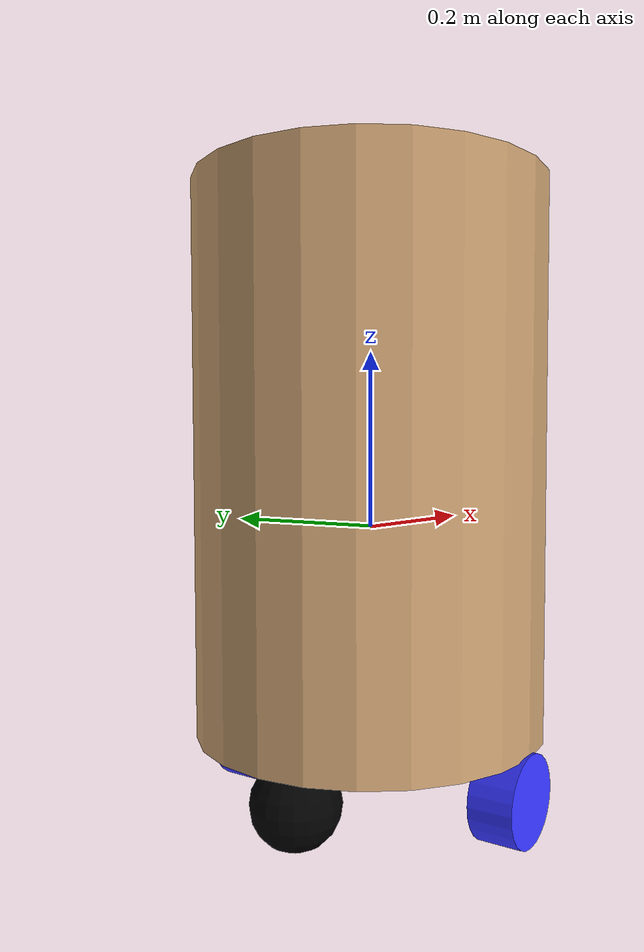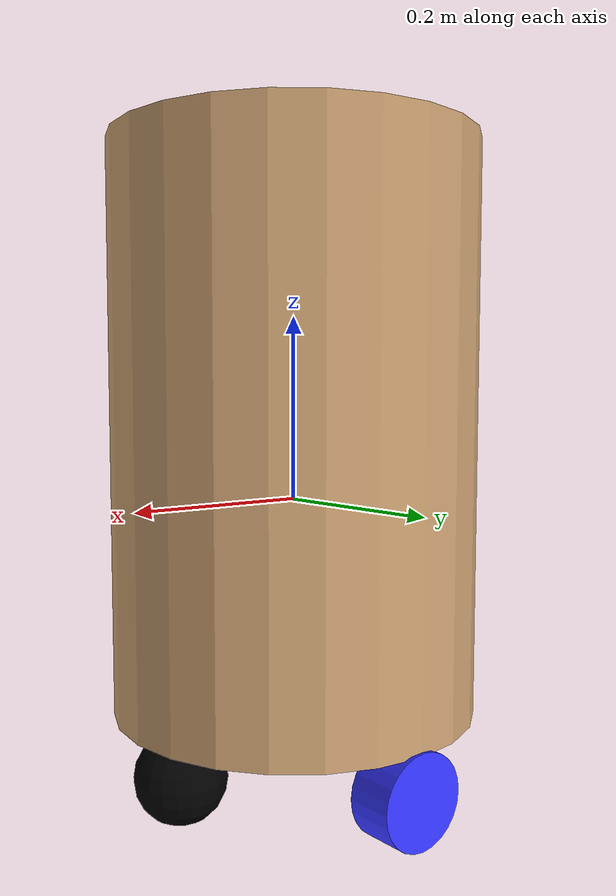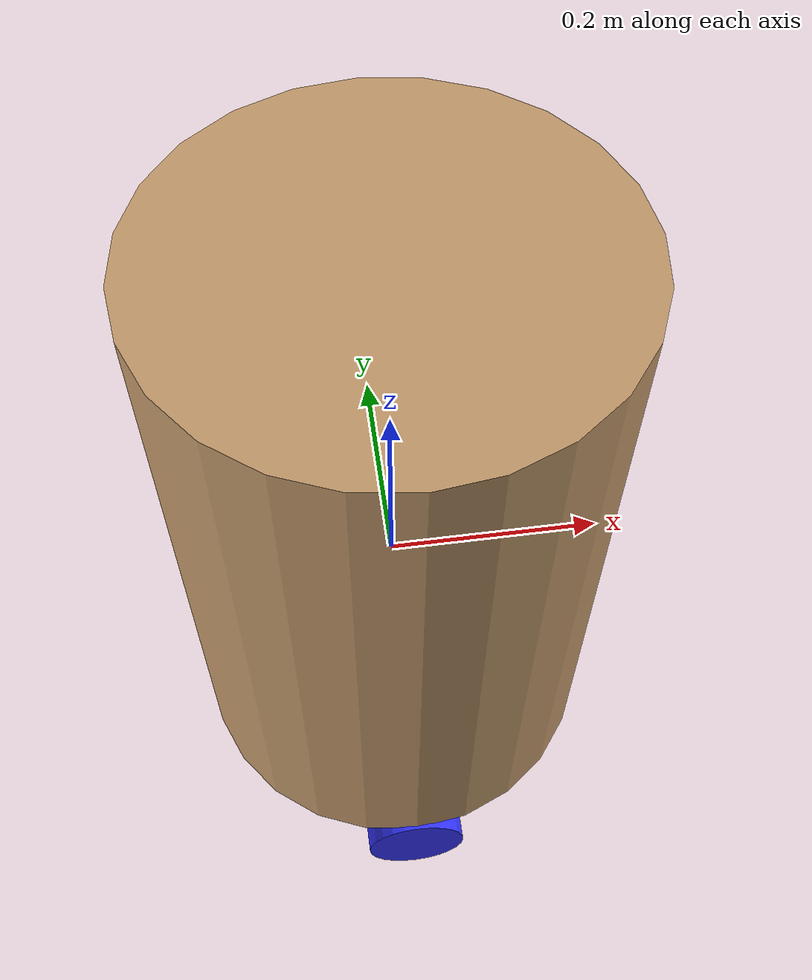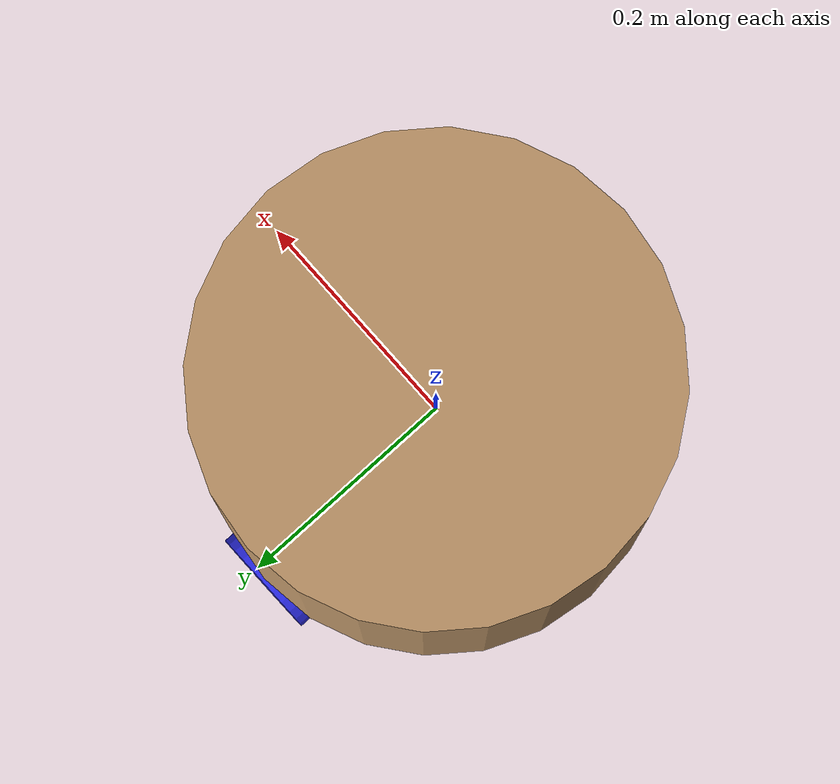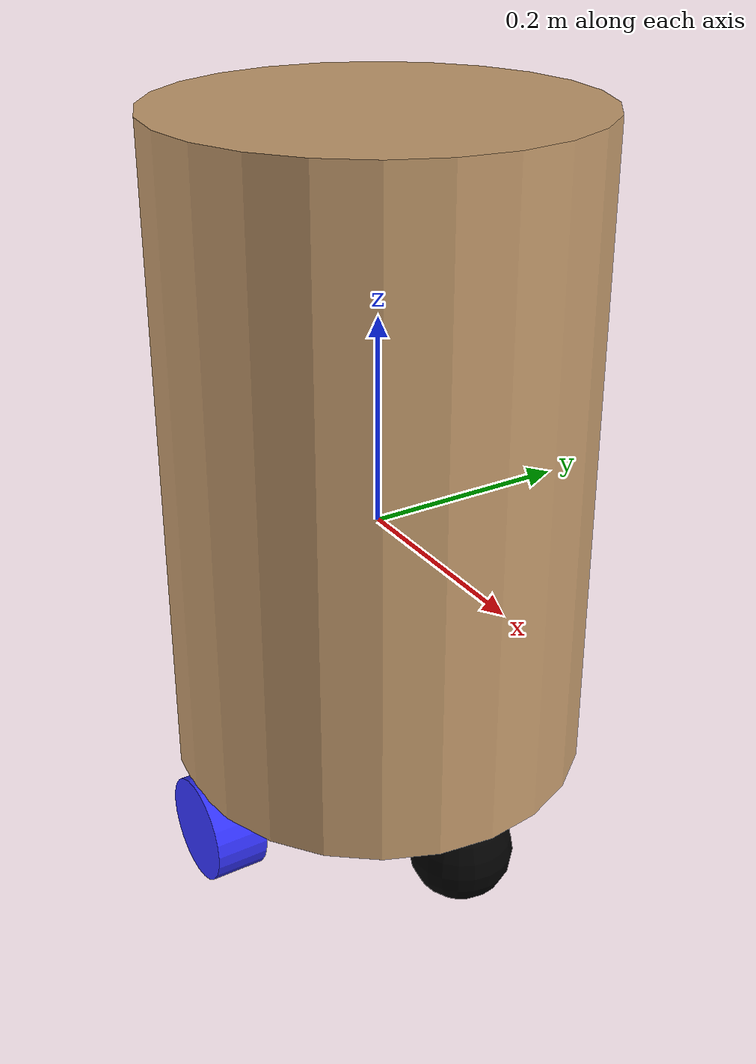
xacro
<?xml version="1.0"?>
<robot xmlns:xacro="http://www.ros.org/wiki/xacro" >

    <xacro:include filename="inertial_macros.xacro"/>

    <material name="white">
        <color rgba="1 1 1 1" />
    </material>

    <material name="orange">
        <color rgba="1 0.3 0.1 1"/>
    </material>

    <material name="blue">
        <color rgba="0.2 0.2 1 1"/>
    </material>

    <material name="black">
        <color rgba="0 0 0 1"/>
    </material>

    <material name="wood">
        <color rgba="0.76 0.6 0.42 1"/>
    </material>

    <material name="red">
        <color rgba="1 0 0 1"/>
    </material>

    <!-- BASE LINK -->

    <link name="base_link">

    </link>

    <!-- BASE_FOOTPRINT LINK -->

    <joint name="base_footprint_joint" type="fixed">
        <parent link="base_link"/>
        <child link="base_footprint"/>
        <origin xyz="0 0 0" rpy="0 0 0"/>
    </joint>

    <link name="base_footprint">
    </link>

    <!-- CHASSIS LINK -->

    <joint name="chassis_joint" type="fixed">
        <parent link="base_link"/>
        <child link="chassis"/>
        <origin xyz="-0.15 0 0"/>
    </joint>

    <link name="chassis">
        <visual>
            <origin xyz="0.15 0 0.075"/>
            <geometry>
                <cylinder radius="0.2" length="0.62"/>
            </geometry>
            <material name="wood"/>
        </visual>
        <collision>
            <origin xyz="0.15 0 0.075"/>
            <geometry>
                <cylinder radius="0.2" length="0.62"/>
            </geometry>
        </collision>
        <xacro:inertial_cylinder mass="0.5" length="0.62" radius="0.1">
            <origin xyz="0.15 0 0.075" rpy="0 0 0"/>
        </xacro:inertial_cylinder>
    </link>
    <gazebo reference="chassis">
        <material>Gazebo/Wood</material>
    </gazebo>

    <!-- LEFT WHEEL LINK -->

    <joint name="left_wheel_joint" type="continuous">
        <parent link="base_link"/>
        <child link="left_wheel"/>
        <origin xyz="-0.0001 0.178 -0.28" rpy="-${pi/2} 0 0" />
        <axis xyz="0 0 1"/>
    </joint>

    <link name="left_wheel">
        <visual>
            <geometry>
                <cylinder radius="0.05" length="0.05"/>
            </geometry>
            <material name="blue"/>
        </visual>
        <collision>
            <geometry>
                <cylinder radius="0.05" length="0.05"/>
            </geometry>
        </collision>
        <xacro:inertial_cylinder mass="0.1" length="0.05" radius="0.05">
            <origin xyz="0 0 0" rpy="0 0 0"/>
        </xacro:inertial_cylinder>
    </link>
    <gazebo reference="left_wheel">
        <material>Gazebo/Blue</material>
    </gazebo>

    <!-- RIGHT WHEEL LINK -->

    <joint name="right_wheel_joint" type="continuous">
        <parent link="base_link"/>
        <child link="right_wheel"/>
        <origin xyz="-0.0001 -0.178 -0.28" rpy="${pi/2} 0 0" />
        <axis xyz="0 0 -1"/>
    </joint>

    <link name="right_wheel">
        <visual>
            <geometry>
                <cylinder radius="0.05" length="0.05"/>
            </geometry>
            <material name="blue"/>
        </visual>
        <collision>
            <geometry>
                <cylinder radius="0.05" length="0.05"/>
            </geometry>
        </collision>
        <xacro:inertial_cylinder mass="0.1" length="0.05" radius="0.05">
            <origin xyz="0 0 0" rpy="0 0 0"/>
        </xacro:inertial_cylinder>
    </link>
    <gazebo reference="right_wheel">
        <material>Gazebo/Blue</material>
    </gazebo>

    <!-- CASTER WHEEL LINK -->

    <joint name="caster_wheel_joint1" type="fixed">
        <parent link="chassis"/>
        <child link="caster_wheel1"/>
        <origin xyz="0.3 0 -0.27999"/>
    </joint>

    <link name="caster_wheel1">
        <visual>
            <geometry>
                <sphere radius="0.049"/>
            </geometry>
            <material name="black"/>
        </visual>
        <collision>
            <geometry>
                <sphere radius="0.049"/>
            </geometry>
        </collision>
        <xacro:inertial_sphere mass="0.1" radius="0.049">
            <origin xyz="0 0 0" rpy="0 0 0"/>
        </xacro:inertial_sphere>
    </link>
    <gazebo reference="caster_wheel1">
        <material>Gazebo/Black</material>
        <mu1>0.0</mu1>
        <mu2>0.0</mu2>
        <kp>1000000.0</kp>
        <kd>100.0</kd>
        <minDepth>0.001</minDepth>
        <maxVel>1.0</maxVel>
    </gazebo>

     <!-- CASTER WHEEL LINK 2 -->

     <joint name="caster_wheel_joint2" type="fixed">
        <parent link="chassis"/>
        <child link="caster_wheel2"/>
        <origin xyz="0.01 0 -0.27999"/>
    </joint>

    <link name="caster_wheel2">
        <visual>
            <geometry>
                <sphere radius="0.049"/>
            </geometry>
            <material name="black"/>
        </visual>
        <collision>
            <geometry>
                <sphere radius="0.049"/>
            </geometry>
        </collision>
        <xacro:inertial_sphere mass="0.1" radius="0.049">
            <origin xyz="0 0 0" rpy="0 0 0"/>
        </xacro:inertial_sphere>
    </link>
    <gazebo reference="caster_wheel2">
        <material>Gazebo/Black</material>
        <mu1>0.0</mu1>
        <mu2>0.0</mu2>
        <kp>1000000.0</kp>
        <kd>100.0</kd>
        <minDepth>0.001</minDepth>
        <maxVel>1.0</maxVel>
    </gazebo>

</robot>
